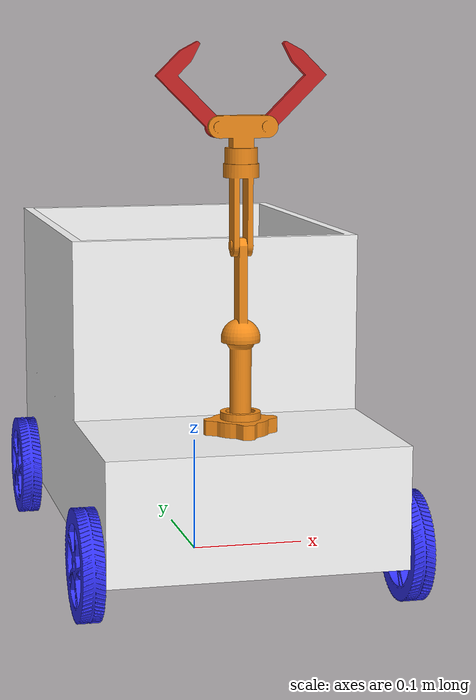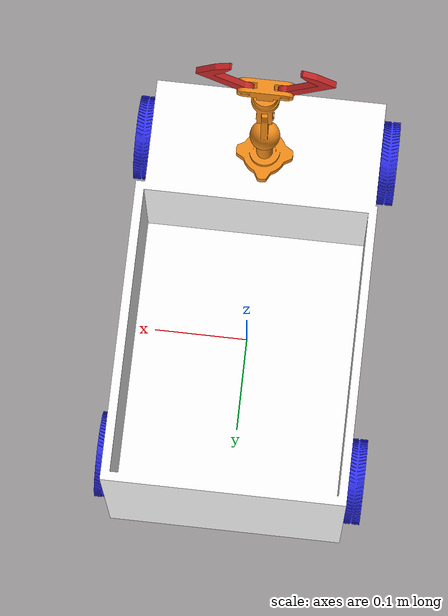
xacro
<?xml version="1.0"?>
<robot xmlns:xacro="http://www.ros.org/wiki/xacro"  name="robot">

    <xacro:include filename="robot_core.xacro" />
    <xacro:include filename="gazebo_control.xacro" />
    <xacro:include filename="inertial_macros.xacro" />
    <xacro:include filename="robot_control.urdf.xacro" />
    <xacro:include filename="arm2transmission.xacro" />
    <xacro:include filename="arm3transmission.xacro" />
    <xacro:include filename="arm4transmission.xacro" />
    <xacro:include filename="grip1transmission.xacro" />
    <xacro:include filename="grip2transmission.xacro" />

    <ros2_control name = "GazeboSimSystem" type= "system">
        <hardware>
            <plugin>gazebo_ros2_control/GazeboSystem</plugin>
        </hardware>
        <xacro:arm2transmission/>
        <xacro:arm3transmission/>
        <xacro:arm4transmission/>
        <xacro:grip1transmission/>
        <xacro:grip2transmission/>
    </ros2_control>
    <xacro:robot_controller/>

</robot>

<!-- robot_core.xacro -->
<robot xmlns:xacro="http://www.ros.org/wiki/xacro" >
    <xacro:include filename="inertial_macros.xacro" />

    <material name="white">
        <color rgba="1 1 1 1" />
    </material>

    <material name="orange">
        <color rgba="1 0.3 0.1 1"/>
    </material>

    <material name="blue">
        <color rgba="0.2 0.2 1 1"/>
    </material>

    <material name="black">
        <color rgba="0 0 0 1"/>
    </material>

    <material name="red">
        <color rgba="1 0 0 1"/>
    </material>

    <!-- BASE LINK -->

    <link name="base_link">

    </link>

    <joint name="chassis_joint" type="fixed">
        <parent link="base_link"/>
        <child link="chassis"/>
        <origin xyz="0 0 0"/>
        <dynamics damping="1" friction="1"/>
    </joint>

    <gazebo reference="chassis">
        <material>Gazebo/Orange</material>
    </gazebo>

    <!-- CHASSIS body -->

    <link name="chassis">
        <visual>
            <origin xyz="0 0 0.0410" rpy="0 0 0"/>
            <geometry>
                <mesh filename="file:///home/muay/my_project_ws/src/articubot_one/description/Body.dae" scale = "10 10 10"/>
            </geometry>
            <material name="white"/>
        </visual>
        <collision>
            <origin xyz="0 0 0.0410" rpy="0 0 0"/>
            <geometry>
                <mesh filename="file:///home/muay/my_project_ws/src/articubot_one/description/Body.dae" scale = "10 10 10"/>
            </geometry>
        </collision>
        <xacro:inertial_box mass="3" x="0.05" y="0.05" z="0.15">
            <origin xyz="0 0 0.09" rpy="0 0 0"/>
        </xacro:inertial_box>
    </link>

    <!-- LEFT FRONT WHEEL -->

    <joint name="left_front_wheel_joint" type="continuous">
        <parent link="base_link"/>
        <child link="left_front_wheel"/>
        <origin xyz="0.13185 -0.2 0.05" rpy="0 0 ${pi/2} "/>
        <axis xyz="0 -1 0"/>  <!-- axis = แกนหมุน -->
        <dynamics damping="1" friction="1"/>
    </joint>
    <link name="left_front_wheel">
        <visual>
            <geometry>
                <mesh filename="file:///home/muay/my_project_ws/src/articubot_one/description/wheel_final.dae"/>
            </geometry>
            <material name="blue"/>
        </visual>
        <collision>
            <geometry>
                <mesh filename="file:///home/muay/my_project_ws/src/articubot_one/description/wheel_final.dae"/>
            </geometry>
        </collision>
        <xacro:inertial_cylinder mass="0.5" length="0.02" radius="0.05">
            <origin xyz="0 0 0" rpy="${pi/2} ${pi/2} 0"/>
        </xacro:inertial_cylinder>
    </link>
    <gazebo reference="left_front_wheel">
        <material>Gazebo/Blue</material>
        <mu1 value="0.1"/>
        <mu2 value="0.1"/>
    </gazebo>

   <!-- LEFT BACK WHEEL -->

    <joint name="left_back_wheel_joint" type="continuous">
        <parent link="base_link"/>
        <child link="left_back_wheel"/>
        <origin xyz="0.13185 0.15 0.05" rpy="0 0 ${pi/2}"/>
        <axis xyz="0 -1 0"/>
        <dynamics damping="1" friction="1"/>
    </joint>
    <link name="left_back_wheel">
        <visual>
            <geometry>
                <mesh filename="file:///home/muay/my_project_ws/src/articubot_one/description/wheel_final.dae"/>
            </geometry>
            <material name="blue"/>
        </visual>
        <collision>
            <geometry>
                <mesh filename="file:///home/muay/my_project_ws/src/articubot_one/description/wheel_final.dae"/>
            </geometry>
        </collision>
        <xacro:inertial_cylinder mass="0.5" length="0.02" radius="0.05">
            <origin xyz="0 0 0" rpy="${pi/2} ${pi/2} 0"/>
        </xacro:inertial_cylinder>
    </link>
    <gazebo reference="left_back_wheel">
        <material>Gazebo/Blue</material>
        <mu1 value="0.1"/>
        <mu2 value="0.1"/>
    </gazebo>

    <!-- RIGHT FRONT WHEEL -->

    <joint name="right_front_wheel_joint" type="continuous">
        <parent link="base_link"/>
        <child link="right_front_wheel"/>
        <origin xyz="-0.13185 -0.2 0.05" rpy="0 0 ${pi/2} "/>
        <axis xyz="0 -1 0"/>
        <dynamics damping="1" friction="1"/>
    </joint>
    <link name="right_front_wheel">
        <visual>
            <geometry>
                <mesh filename="file:///home/muay/my_project_ws/src/articubot_one/description/wheel_final.dae"/>
            </geometry>
            <material name="blue"/>
        </visual>
        <collision>
            <geometry>
                <mesh filename="file:///home/muay/my_project_ws/src/articubot_one/description/wheel_final.dae"/>
            </geometry>
        </collision>
        <xacro:inertial_cylinder mass="0.5" length="0.02" radius="0.05">
            <origin xyz="0 0 0" rpy="${pi/2} ${pi/2} 0"/>
        </xacro:inertial_cylinder>
    </link>
    <gazebo reference="right_front_wheel">
        <material>Gazebo/Blue</material>
        <mu1 value="0.1"/>
        <mu2 value="0.1"/>
    </gazebo>

    <!-- RIGHT BACK WHEEL -->

    <joint name="right_back_wheel_joint" type="continuous">
        <parent link="base_link"/>
        <child link="right_back_wheel"/>
        <origin xyz="-0.13185  0.15 0.05" rpy="0 0 ${pi/2} "/>
        <axis xyz="0 -1 0"/>
        <dynamics damping="1" friction="1"/>
    </joint>
    <link name="right_back_wheel">
        <visual>
            <geometry>
                <mesh filename="file:///home/muay/my_project_ws/src/articubot_one/description/wheel_final.dae"/>
            </geometry>
            <material name="blue"/>
        </visual>
        <collision>
            <geometry>
                <mesh filename="file:///home/muay/my_project_ws/src/articubot_one/description/wheel_final.dae"/>
            </geometry>
        </collision>
        <xacro:inertial_cylinder mass="0.5" length="0.02" radius="0.05">
            <origin xyz="0 0 0" rpy="${pi/2} ${pi/2} 0"/>
        </xacro:inertial_cylinder>
    </link>
    <gazebo reference="right_back_wheel">
        <material>Gazebo/Blue</material>
        <mu1 value="0.1"/>
        <mu2 value="0.1"/>
    </gazebo>

     <!-- Arm Joint 1 -->
    <joint name="arm_1_joint" type="fixed">
        <parent link="chassis"/>
        <child link="arm_1"/>
        <origin xyz="0 -0.17 0.143" rpy="0 0 0"/>
        <axis xyz="0 0 1"/>
        <limit lower = "-3.14" upper = "3.14" effort = "0.5" velocity="0.5" />
        <dynamics damping="1" friction="1"/>
    </joint>

    <link name="arm_1">
        <visual>
            <geometry>
                <mesh filename="file:///home/muay/my_project_ws/src/articubot_one/description/Robot_Arm1.dae"/>
            </geometry>
        </visual>
        <collision>
            <geometry>
                <mesh filename="file:///home/muay/my_project_ws/src/articubot_one/description/Robot_Arm1.dae"/>
            </geometry>
        </collision>
        <xacro:inertial_cylinder mass="0.05" length="0.01" radius="0.01">
            <origin xyz="0 0 0" rpy="0 0 0"/>
        </xacro:inertial_cylinder>
    </link>

    <gazebo reference="arm_1">
        <material>Gazebo/Orange</material>
        <mu1 value="0.1"/>
        <mu2 value="0.1"/>
    </gazebo>

    <!-- Arm Joint 2 -->

    <joint name="arm_2_joint" type="revolute">
        <parent link="arm_1"/>
        <child link="arm_2"/>
        <origin xyz="0 0 0.08" rpy="0 0 -${pi/2}"/>
        <axis xyz="0 1 0"/>
        <limit lower = "-0.12" upper = "2.0" effort = "0.5" velocity="0.5" />
        <dynamics damping="1" friction="1"/>
    </joint>

    <link name="arm_2">
        <visual>
            <geometry>
                <mesh filename="file:///home/muay/my_project_ws/src/articubot_one/description/Robot_Arm2.dae"/>
            </geometry>
        </visual>
        <collision>
            <geometry>
                <mesh filename="file:///home/muay/my_project_ws/src/articubot_one/description/Robot_Arm2.dae"/>
            </geometry>
        </collision>
        <xacro:inertial_cylinder mass="0.05" length="0.01" radius="0.01">
            <origin xyz="0 0 0" rpy="0 0 0"/>
        </xacro:inertial_cylinder>
    </link>

    <gazebo reference="arm_2">
        <material>Gazebo/Orange</material>
        <mu1 value="0.1"/>
        <mu2 value="0.1"/>
    </gazebo>

    <!-- Arm Joint 3 -->

    <joint name="arm_3_joint" type="revolute">
        <parent link="arm_2"/>
        <child link="arm_3"/>
        <origin xyz="0 0 0.07" rpy="0 0 0"/>
        <axis xyz="0 1 0"/>
        <limit lower = "-2.66" upper = "2.66" effort = "0.5" velocity="0.5" />
        <dynamics damping="1" friction="1"/>
    </joint>

    <link name="arm_3">
        <visual>
            <geometry>
                <mesh filename="file:///home/muay/my_project_ws/src/articubot_one/description/Robot_Arm3.dae"/>
            </geometry>
        </visual>
        <collision>
            <geometry>
                <mesh filename="file:///home/muay/my_project_ws/src/articubot_one/description/Robot_Arm3.dae"/>
            </geometry>
        </collision>
        <xacro:inertial_cylinder mass="0.05" length="0.01" radius="0.01">
            <origin xyz="0 0 0" rpy="0 0 0"/>
        </xacro:inertial_cylinder>
    </link>

    <gazebo reference="arm_3">
        <material>Gazebo/Orange</material>
        <mu1 value="0.1"/>
        <mu2 value="0.1"/>
    </gazebo>

    <!-- Arm Joint 4 -->

    <joint name="arm_4_joint" type="revolute">
        <parent link="arm_3"/>
        <child link="arm_4"/>
        <origin xyz="0 0 0.075" rpy="-${pi} 0 -${pi}"/>
        <axis xyz="0 0 1"/>
        <limit lower = "-3.14" upper = "3.14" effort = "0.5" velocity="0.5" />
        <dynamics damping="1" friction="1"/>
    </joint>

    <link name="arm_4">
        <visual>
            <geometry>
                <mesh filename="file:///home/muay/my_project_ws/src/articubot_one/description/Robot_Arm4.dae"/>
            </geometry>
        </visual>
        <collision>
            <geometry>
                <mesh filename="file:///home/muay/my_project_ws/src/articubot_one/description/Robot_Arm4.dae"/>
            </geometry>
        </collision>
        <xacro:inertial_cylinder mass="0.05" length="0.01" radius="0.01">
            <origin xyz="0 0 0" rpy="0 0 0"/>
        </xacro:inertial_cylinder>
    </link>

    <gazebo reference="arm_4">
        <material>Gazebo/Orange</material>
        <mu1 value="0.1"/>
        <mu2 value="0.1"/>
    </gazebo>

    <!-- Arm Joint 5 -->

    <joint name="arm_5_joint" type="fixed">
        <parent link="arm_4"/>
        <child link="arm_5"/>
        <origin xyz="0 0 0.0" rpy="0 -${pi} -${pi/2}"/>
        <axis xyz="0 1 0"/>
        <limit lower = "-3.14" upper = "3.14" effort = "1" velocity="1" />
        <dynamics damping="1" friction="1"/>
    </joint>

    <link name="arm_5">
        <visual>
            <geometry>
                <mesh filename="file:///home/muay/my_project_ws/src/articubot_one/description/Robot_Arm5.dae"/>
            </geometry>
        </visual>
        <collision>
            <geometry>
                <mesh filename="file:///home/muay/my_project_ws/src/articubot_one/description/Robot_Arm5.dae"/>
            </geometry>
        </collision>
        <xacro:inertial_cylinder mass="0.05" length="0.01" radius="0.01">
            <origin xyz="0 0 0" rpy="0 0 0"/>
        </xacro:inertial_cylinder>
    </link>

    <gazebo reference="arm_5">
        <material>Gazebo/Orange</material>
        <mu1 value="0.1"/>
        <mu2 value="0.1"/>
    </gazebo>

    <!-- GRIP -->
    <!-- Grip 1 -->

    <joint name="grip_1_joint" type="revolute">
        <parent link="arm_5"/>
        <child link="grip_1"/>
        <origin xyz="0.02 0 0.02" rpy="0 0 0"/>
        <axis xyz="0 1 0"/>
        <limit lower = "-0.52" upper = "1.74" effort = "1" velocity="0.01" />
        <dynamics damping="1" friction="1"/>
    </joint>

    <link name="grip_1">
        <visual>
            <geometry>
                <mesh filename="file:///home/muay/my_project_ws/src/articubot_one/description/Robot_Armgrip1.dae"/>
            </geometry>
        </visual>
        <collision>
            <geometry>
                <mesh filename="file:///home/muay/my_project_ws/src/articubot_one/description/Robot_Armgrip1.dae"/>
            </geometry>
        </collision>
        <xacro:inertial_cylinder mass="0.05" length="0.01" radius="0.01">
            <origin xyz="0 0 0" rpy="0 0 0"/>
        </xacro:inertial_cylinder>
    </link>

    <gazebo reference="grip_1">
        <material>Gazebo/Red</material>
        <mu1 value="0.1"/>
        <mu2 value="0.1"/>
    </gazebo>

    <!-- Grip 2 -->

    <joint name="grip_2_joint" type="revolute">
        <parent link="arm_5"/>
        <child link="grip_2"/>
        <origin xyz="-0.02 0 0.02" rpy="0 0 0"/>
        <axis xyz="0 1 0"/>
        <limit lower = "-1.74" upper = "0.52" effort = "1" velocity="0.01" />
        <dynamics damping="1" friction="1"/>
    </joint>

    <link name="grip_2">
        <visual>
            <geometry>
                <mesh filename="file:///home/muay/my_project_ws/src/articubot_one/description/Robot_Armgrip2.dae"/>
            </geometry>
        </visual>
        <collision>
            <geometry>
                <mesh filename="file:///home/muay/my_project_ws/src/articubot_one/description/Robot_Armgrip2.dae"/>
            </geometry>
        </collision>
        <xacro:inertial_cylinder mass="0.05" length="0.01" radius="0.01">
            <origin xyz="0 0 0" rpy="0 0 0"/>
        </xacro:inertial_cylinder>
    </link>

    <gazebo reference="grip_2">
        <material>Gazebo/Red</material>
        <mu1 value="0.1"/>
        <mu2 value="0.1"/>
    </gazebo>

</robot>
